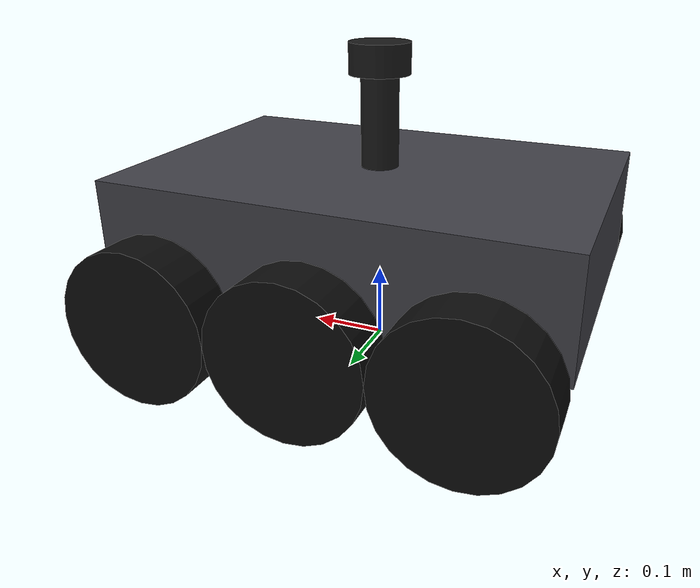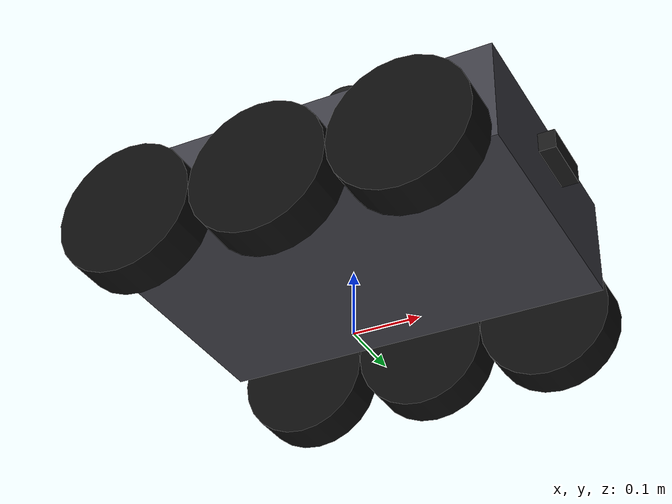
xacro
<?xml version="1.0"?>
<robot name="ugv_robot" xmlns:xacro="http://www.ros.org/wiki/xacro">

  <!-- ================= PROPERTIES ================= -->
  <xacro:property name="chassis_length" value="0.6"/>
  <xacro:property name="chassis_width"  value="0.4"/>
  <xacro:property name="chassis_height" value="0.15"/>
  <xacro:property name="chassis_mass"   value="8.0"/>

  <xacro:property name="wheel_radius" value="0.1"/>
  <xacro:property name="wheel_width"  value="0.06"/>
  <xacro:property name="wheel_mass"   value="1.2"/>
  <xacro:property name="wheel_gap"    value="0.02"/>

  <xacro:property name="wheel_y" value="${chassis_width/2 + wheel_width/2 + wheel_gap}"/>
  <xacro:property name="wheel_x_front" value="0.2"/>
  <xacro:property name="wheel_x_mid"   value="0.0"/>
  <xacro:property name="wheel_x_rear"  value="-0.2"/>
  <xacro:property name="wheel_z" value="${-(chassis_height/2)}"/>

  <xacro:property name="base_z" value="${wheel_radius + chassis_height/2}"/>

  <!-- ================= MATERIALS ================= -->
  <material name="chassis_grey"><color rgba="0.25 0.25 0.28 1"/></material>
  <material name="wheel_black"><color rgba="0.05 0.05 0.05 1"/></material>
  <material name="sensor_dark"><color rgba="0.1 0.1 0.1 1"/></material>
  <material name="lens_blue"><color rgba="0.1 0.3 0.8 1"/></material>

  <!-- ================= BASE FOOTPRINT / LINK ================= -->
  <link name="base_footprint"/>

  <joint name="base_footprint_joint" type="fixed">
    <parent link="base_footprint"/>
    <child  link="base_link"/>
    <origin xyz="0 0 ${base_z}" rpy="0 0 0"/>
  </joint>

  <link name="base_link">
    <visual>
      <geometry><box size="${chassis_length} ${chassis_width} ${chassis_height}"/></geometry>
      <material name="chassis_grey"/>
    </visual>
    <collision>
      <geometry><box size="${chassis_length} ${chassis_width} ${chassis_height}"/></geometry>
    </collision>
    <inertial>
      <mass value="${chassis_mass}"/>
      <inertia ixx="${(chassis_mass/12)*(chassis_width*chassis_width+chassis_height*chassis_height)}"
               iyy="${(chassis_mass/12)*(chassis_length*chassis_length+chassis_height*chassis_height)}"
               izz="${(chassis_mass/12)*(chassis_length*chassis_length+chassis_width*chassis_width)}"
               ixy="0" ixz="0" iyz="0"/>
    </inertial>
  </link>

  <gazebo reference="base_link">
    <material>Gazebo/DarkGrey</material>
  </gazebo>

  <!-- ================= WHEEL MACRO ================= -->
  <xacro:macro name="wheel" params="prefix x y">
    <link name="${prefix}_wheel">
      <visual>
        <origin xyz="0 0 0" rpy="1.5708 0 0"/>
        <geometry><cylinder radius="${wheel_radius}" length="${wheel_width}"/></geometry>
        <material name="wheel_black"/>
      </visual>
      <collision>
        <origin xyz="0 0 0" rpy="1.5708 0 0"/>
        <geometry><cylinder radius="${wheel_radius}" length="${wheel_width}"/></geometry>
      </collision>
      <inertial>
        <mass value="${wheel_mass}"/>
        <inertia ixx="${(wheel_mass/12)*(3*wheel_radius*wheel_radius+wheel_width*wheel_width)}"
                 iyy="${(wheel_mass/12)*(3*wheel_radius*wheel_radius+wheel_width*wheel_width)}"
                 izz="${(wheel_mass/2)*wheel_radius*wheel_radius}"
                 ixy="0" ixz="0" iyz="0"/>
      </inertial>
    </link>

    <joint name="${prefix}_wheel_joint" type="continuous">
      <parent link="base_link"/>
      <child  link="${prefix}_wheel"/>
      <origin xyz="${x} ${y} ${wheel_z}" rpy="0 0 0"/>
      <axis xyz="0 1 0"/>
      <dynamics damping="0.1" friction="0.1"/>
    </joint>

    <gazebo reference="${prefix}_wheel">
      <material>Gazebo/Black</material>
      <mu1>1.2</mu1>
      <mu2>1.2</mu2>
    </gazebo>
  </xacro:macro>

  <xacro:wheel prefix="front_left"  x="${wheel_x_front}" y="${wheel_y}"/>
  <xacro:wheel prefix="mid_left"    x="${wheel_x_mid}"   y="${wheel_y}"/>
  <xacro:wheel prefix="rear_left"   x="${wheel_x_rear}"  y="${wheel_y}"/>
  <xacro:wheel prefix="front_right" x="${wheel_x_front}" y="${-wheel_y}"/>
  <xacro:wheel prefix="mid_right"   x="${wheel_x_mid}"   y="${-wheel_y}"/>
  <xacro:wheel prefix="rear_right"  x="${wheel_x_rear}"  y="${-wheel_y}"/>

  <!-- ================= LIDAR MAST + LIDAR ================= -->
  <link name="lidar_mast">
    <visual>
      <geometry><cylinder radius="0.025" length="0.12"/></geometry>
      <material name="sensor_dark"/>
    </visual>
    <collision>
      <geometry><cylinder radius="0.025" length="0.12"/></geometry>
    </collision>
    <inertial>
      <mass value="0.15"/>
      <inertia ixx="0.0002" iyy="0.0002" izz="0.0001" ixy="0" ixz="0" iyz="0"/>
    </inertial>
  </link>

  <joint name="lidar_mast_joint" type="fixed">
    <parent link="base_link"/>
    <child  link="lidar_mast"/>
    <origin xyz="0 0 ${chassis_height/2 + 0.06}" rpy="0 0 0"/>
  </joint>

  <link name="lidar_link">
    <visual>
      <geometry><cylinder radius="0.04" length="0.04"/></geometry>
      <material name="sensor_dark"/>
    </visual>
    <collision>
      <geometry><cylinder radius="0.04" length="0.04"/></geometry>
    </collision>
    <inertial>
      <mass value="0.2"/>
      <inertia ixx="0.0001" iyy="0.0001" izz="0.0001" ixy="0" ixz="0" iyz="0"/>
    </inertial>
  </link>

  <joint name="lidar_joint" type="fixed">
    <parent link="lidar_mast"/>
    <child  link="lidar_link"/>
    <origin xyz="0 0 0.08" rpy="0 0 0"/>
  </joint>

  <gazebo reference="lidar_link">
    <sensor name="lidar" type="gpu_lidar">
      <topic>scan</topic>
      <update_rate>10</update_rate>
      <gz_frame_id>lidar_link</gz_frame_id>
      <lidar>
        <scan>
          <horizontal>
            <samples>360</samples>
            <min_angle>-3.14159</min_angle>
            <max_angle>3.14159</max_angle>
          </horizontal>
        </scan>
        <range>
          <min>0.12</min>
          <max>12.0</max>
          <resolution>0.01</resolution>
        </range>
      </lidar>
      <always_on>true</always_on>
      <visualize>true</visualize>
    </sensor>
  </gazebo>

  <!-- ================= DEPTH CAMERA ================= -->
  <link name="camera_link">
    <visual>
      <geometry><box size="0.03 0.09 0.03"/></geometry>
      <material name="sensor_dark"/>
    </visual>
    <collision>
      <geometry><box size="0.03 0.09 0.03"/></geometry>
    </collision>
    <inertial>
      <mass value="0.12"/>
      <inertia ixx="0.0001" iyy="0.0001" izz="0.0001" ixy="0" ixz="0" iyz="0"/>
    </inertial>
  </link>

  <joint name="camera_joint" type="fixed">
    <parent link="base_link"/>
    <child  link="camera_link"/>
    <origin xyz="${chassis_length/2 + 0.01} 0 0.02" rpy="0 0 0"/>
  </joint>

  <link name="camera_optical_frame"/>

  <joint name="camera_optical_joint" type="fixed">
    <parent link="camera_link"/>
    <child  link="camera_optical_frame"/>
    <origin xyz="0 0 0" rpy="0 0 0"/>
  </joint>

  <gazebo reference="camera_link">
    <sensor name="depth_camera" type="rgbd_camera">
      <topic>camera</topic>
      <update_rate>15</update_rate>
      <gz_frame_id>camera_optical_frame</gz_frame_id>
      <camera>
        <horizontal_fov>1.047</horizontal_fov>
        <image>
          <width>640</width>
          <height>480</height>
        </image>
        <clip>
          <near>0.1</near>
          <far>10.0</far>
        </clip>
      </camera>
      <always_on>true</always_on>
      <visualize>true</visualize>
    </sensor>
  </gazebo>

  <!-- ================= GAZEBO CONTROL PLUGINS ================= -->
  <gazebo>
    <plugin filename="gz-sim-diff-drive-system" name="gz::sim::systems::DiffDrive">
      <left_joint>front_left_wheel_joint</left_joint>
      <left_joint>mid_left_wheel_joint</left_joint>
      <left_joint>rear_left_wheel_joint</left_joint>
      <right_joint>front_right_wheel_joint</right_joint>
      <right_joint>mid_right_wheel_joint</right_joint>
      <right_joint>rear_right_wheel_joint</right_joint>
      <wheel_separation>${2*wheel_y}</wheel_separation>
      <wheel_radius>${wheel_radius}</wheel_radius>
      <topic>cmd_vel</topic>
      <odom_topic>odom</odom_topic>
      <tf_topic>tf</tf_topic>
      <frame_id>odom</frame_id>
      <child_frame_id>base_footprint</child_frame_id>
    </plugin>
    <plugin filename="gz-sim-joint-state-publisher-system" name="gz::sim::systems::JointStatePublisher"/>
  </gazebo>

</robot>
